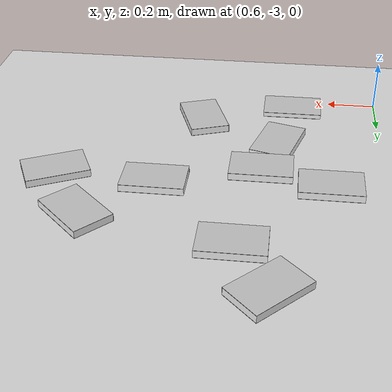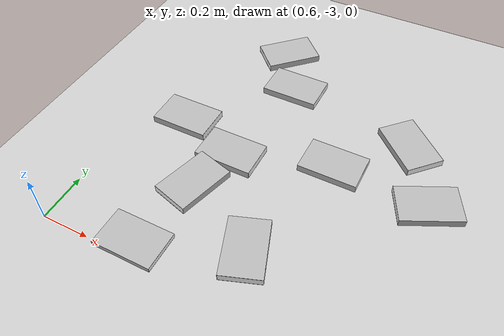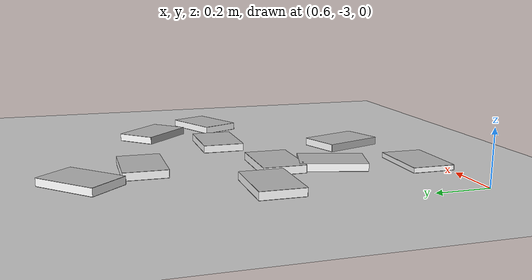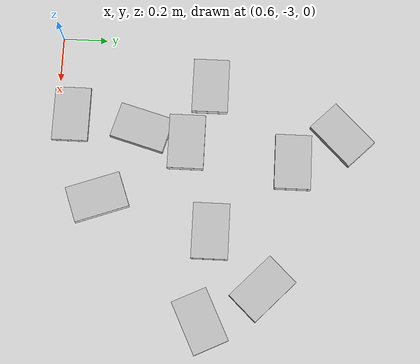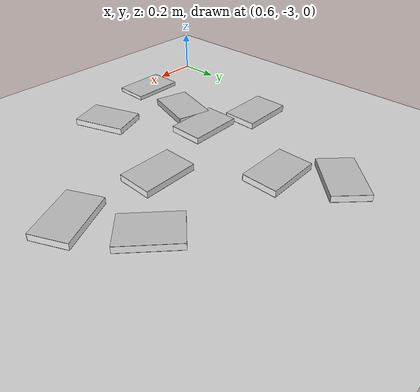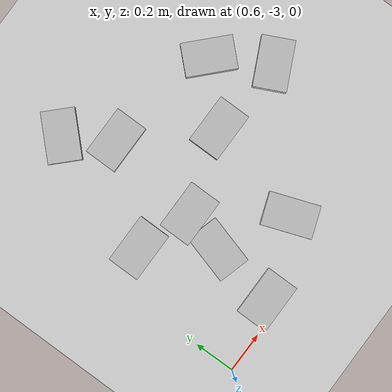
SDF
<sdf version="1.6">
 <world name="default">
  <light name="sun" type="directional">
   <pose>0 0 10 0 -0 0</pose>
   <diffuse>0.8 0.8 0.8 1</diffuse>
   <specular>0.1 0.1 0.1 1</specular>
   <attenuation>
    <range>1000</range>
    <constant>0.9</constant>
    <linear>0.01</linear>
    <quadratic>0.001</quadratic>
   </attenuation>
   <direction>-0.5 0.5 -1</direction>
  </light>
  <model name="ground_plane">
   <static>1</static>
   <link name="link">
    <collision name="collision">
     <geometry><plane><normal>0 0 1</normal><size>100 100</size></plane></geometry>
     <surface><friction><ode><mu>100</mu><mu2>50</mu2></ode></friction></surface>
    </collision>
    <visual name="visual">
     <cast_shadows>0</cast_shadows>
     <geometry><plane><normal>0 0 1</normal><size>100 100</size></plane></geometry>
     <material>
      <script><uri>file://media/materials/scripts/gazebo.material</uri><name>Gazebo/Grey</name></script>
     </material>
    </visual>
   </link>
  </model>
  <gravity>0 0 -9.8</gravity>
  <magnetic_field>6e-06 2.3e-05 -4.2e-05</magnetic_field>
  <atmosphere type="adiabatic"/>
  <physics name="default_physics" default="0" type="ode">
   <max_step_size>0.001</max_step_size>
   <real_time_factor>1</real_time_factor>
   <real_time_update_rate>1000</real_time_update_rate>
  </physics>
  <scene><ambient>0.4 0.4 0.4 1</ambient><background>0.7 0.7 0.7 1</background><shadows>1</shadows></scene>
  <spherical_coordinates>
   <surface_model>EARTH_WGS84</surface_model>
   <latitude_deg>0</latitude_deg>
   <longitude_deg>0</longitude_deg>
   <elevation>0</elevation>
   <heading_deg>0</heading_deg>
  </spherical_coordinates>
  <light name="user_point_light_0" type="point">
   <pose>-1.18893 1.15497 1 0 -0 0</pose>
   <diffuse>0.5 0.5 0.5 1</diffuse>
   <specular>0.1 0.1 0.1 1</specular>
   <attenuation>
    <range>20</range>
    <constant>0.5</constant>
    <linear>0.01</linear>
    <quadratic>0.001</quadratic>
   </attenuation>
   <cast_shadows>0</cast_shadows>
   <direction>0 0 -1</direction>
  </light>
  <light name="user_point_light_1" type="point">
   <pose>4.44294 -4.03108 1 0 -0 0</pose>
   <diffuse>0.5 0.5 0.5 1</diffuse>
   <specular>0.1 0.1 0.1 1</specular>
   <attenuation>
    <range>20</range>
    <constant>0.5</constant>
    <linear>0.01</linear>
    <quadratic>0.001</quadratic>
   </attenuation>
   <cast_shadows>0</cast_shadows>
   <direction>0 0 -1</direction>
  </light>
  <model name="book_10">
   <link name="cover">
    <pose>0 -0.000108 0.015405 0 -0 0</pose>
    <visual name="visual">
     <geometry><box><size>0.245 0.16 0.03</size></box></geometry>
     <material>
      <script>
       <uri>model://book_10/materials/scripts</uri>
       <uri>model://book_10/materials/textures</uri>
       <name>book_10</name>
      </script>
     </material>
    </visual>
    <collision name="collision"><geometry><box><size>0.245 0.16 0.03</size></box></geometry></collision>
   </link>
   <link name="page">
    <pose>0 0.000608 0.015405 0 -0 0</pose>
    <visual name="visual">
     <geometry><box><size>0.24502 0.15862 0.028</size></box></geometry>
     <material>
      <lighting>1</lighting>
      <ambient>1 1 1 1</ambient>
      <diffuse>1 1 1 1</diffuse>
      <specular>0.01 0.01 0.01 1</specular>
      <emissive>0 0 0 1</emissive>
      <shader type="vertex"><normal_map>__default__</normal_map></shader>
     </material>
    </visual>
    <collision name="collision"><geometry><box><size>0.245 0.16 0.03</size></box></geometry></collision>
   </link>
   <static>1</static>
   <pose>1.00183 -1.72763 0 0 -0 0.786912</pose>
  </model>
  <model name="book_14">
   <link name="cover">
    <pose>0 -0.000108 0.015405 0 -0 0</pose>
    <visual name="visual">
     <geometry><box><size>0.245 0.16 0.03</size></box></geometry>
     <material>
      <script>
       <uri>model://book_14/materials/scripts</uri>
       <uri>model://book_14/materials/textures</uri>
       <name>book_14</name>
      </script>
     </material>
    </visual>
    <collision name="collision"><geometry><box><size>0.245 0.16 0.03</size></box></geometry></collision>
   </link>
   <link name="page">
    <pose>0 0.000608 0.015405 0 -0 0</pose>
    <visual name="visual">
     <geometry><box><size>0.24502 0.15862 0.028</size></box></geometry>
     <material>
      <lighting>1</lighting>
      <ambient>1 1 1 1</ambient>
      <diffuse>1 1 1 1</diffuse>
      <specular>0.01 0.01 0.01 1</specular>
      <emissive>0 0 0 1</emissive>
      <shader type="vertex"><normal_map>__default__</normal_map></shader>
     </material>
    </visual>
    <collision name="collision"><geometry><box><size>0.245 0.16 0.03</size></box></geometry></collision>
   </link>
   <static>1</static>
   <pose>1.13518 -1.94196 0 0 -0 0</pose>
  </model>
  <model name="book_10_0">
   <link name="cover">
    <pose>0 -0.000108 0.015405 0 -0 0</pose>
    <visual name="visual">
     <geometry><box><size>0.245 0.16 0.03</size></box></geometry>
     <material>
      <script>
       <uri>model://book_10/materials/scripts</uri>
       <uri>model://book_10/materials/textures</uri>
       <name>book_10</name>
      </script>
     </material>
    </visual>
    <collision name="collision"><geometry><box><size>0.245 0.16 0.03</size></box></geometry></collision>
   </link>
   <link name="page">
    <pose>0 0.000608 0.015405 0 -0 0</pose>
    <visual name="visual">
     <geometry><box><size>0.24502 0.15862 0.028</size></box></geometry>
     <material>
      <lighting>1</lighting>
      <ambient>1 1 1 1</ambient>
      <diffuse>1 1 1 1</diffuse>
      <specular>0.01 0.01 0.01 1</specular>
      <emissive>0 0 0 1</emissive>
      <shader type="vertex"><normal_map>__default__</normal_map></shader>
     </material>
    </visual>
    <collision name="collision"><geometry><box><size>0.245 0.16 0.03</size></box></geometry></collision>
   </link>
   <static>1</static>
   <pose>1.46027 -2.29018 0 0 -0 0</pose>
  </model>
  <model name="book_15">
   <link name="cover">
    <pose>0 -0.000108 0.015405 0 -0 0</pose>
    <visual name="visual">
     <geometry><box><size>0.245 0.16 0.03</size></box></geometry>
     <material>
      <script>
       <uri>model://book_15/materials/scripts</uri>
       <uri>model://book_15/materials/textures</uri>
       <name>book_15</name>
      </script>
     </material>
    </visual>
    <collision name="collision"><geometry><box><size>0.245 0.16 0.03</size></box></geometry></collision>
   </link>
   <link name="page">
    <pose>0 0.000608 0.015405 0 -0 0</pose>
    <visual name="visual">
     <geometry><box><size>0.24502 0.15862 0.028</size></box></geometry>
     <material>
      <lighting>1</lighting>
      <ambient>1 1 1 1</ambient>
      <diffuse>1 1 1 1</diffuse>
      <specular>0.01 0.01 0.01 1</specular>
      <emissive>0 0 0 1</emissive>
      <shader type="vertex"><normal_map>__default__</normal_map></shader>
     </material>
    </visual>
    <collision name="collision"><geometry><box><size>0.245 0.16 0.03</size></box></geometry></collision>
   </link>
   <static>1</static>
   <pose>1.33329 -2.79154 0 0 0 -1.22308</pose>
  </model>
  <model name="book_18">
   <link name="cover">
    <pose>0 -0.000108 0.015405 0 -0 0</pose>
    <visual name="visual">
     <geometry><box><size>0.245 0.16 0.03</size></box></geometry>
     <material>
      <script>
       <uri>model://book_18/materials/scripts</uri>
       <uri>model://book_18/materials/textures</uri>
       <name>book_18</name>
      </script>
     </material>
    </visual>
    <collision name="collision"><geometry><box><size>0.245 0.16 0.03</size></box></geometry></collision>
   </link>
   <link name="page">
    <pose>0 0.000608 0.015405 0 -0 0</pose>
    <visual name="visual">
     <geometry><box><size>0.24502 0.15862 0.028</size></box></geometry>
     <material>
      <lighting>1</lighting>
      <ambient>1 1 1 1</ambient>
      <diffuse>1 1 1 1</diffuse>
      <specular>0.01 0.01 0.01 1</specular>
      <emissive>0 0 0 1</emissive>
      <shader type="vertex"><normal_map>__default__</normal_map></shader>
     </material>
    </visual>
    <collision name="collision"><geometry><box><size>0.245 0.16 0.03</size></box></geometry></collision>
   </link>
   <static>1</static>
   <pose>1.00928 -2.61628 0 0 -0 1.29495</pose>
  </model>
  <model name="book_12">
   <link name="cover">
    <pose>0 -0.000108 0.015405 0 -0 0</pose>
    <visual name="visual">
     <geometry><box><size>0.245 0.16 0.03</size></box></geometry>
     <material>
      <script>
       <uri>model://book_12/materials/scripts</uri>
       <uri>model://book_12/materials/textures</uri>
       <name>book_12</name>
      </script>
     </material>
    </visual>
    <collision name="collision"><geometry><box><size>0.245 0.16 0.03</size></box></geometry></collision>
   </link>
   <link name="page">
    <pose>0 0.000608 0.015405 0 -0 0</pose>
    <visual name="visual">
     <geometry><box><size>0.24502 0.15862 0.028</size></box></geometry>
     <material>
      <lighting>1</lighting>
      <ambient>1 1 1 1</ambient>
      <diffuse>1 1 1 1</diffuse>
      <specular>0.01 0.01 0.01 1</specular>
      <emissive>0 0 0 1</emissive>
      <shader type="vertex"><normal_map>__default__</normal_map></shader>
     </material>
    </visual>
    <collision name="collision"><geometry><box><size>0.245 0.16 0.03</size></box></geometry></collision>
   </link>
   <static>1</static>
   <pose>1.85098 -2.31703 0 0 -0 0.451438</pose>
  </model>
  <model name="book_3">
   <link name="cover">
    <pose>0 -0.000108 0.01 0 -0 0</pose>
    <visual name="visual">
     <geometry><box><size>0.245 0.16 0.02</size></box></geometry>
     <material>
      <script>
       <uri>model://book_3/materials/scripts</uri>
       <uri>model://book_3/materials/textures</uri>
       <name>book_3</name>
      </script>
     </material>
    </visual>
    <collision name="collision"><geometry><box><size>0.245 0.16 0.02</size></box></geometry></collision>
   </link>
   <link name="page">
    <pose>0 0.000608 0.01 0 -0 0</pose>
    <visual name="visual">
     <geometry><box><size>0.24502 0.15862 0.018</size></box></geometry>
     <material>
      <lighting>1</lighting>
      <ambient>1 1 1 1</ambient>
      <diffuse>1 1 1 1</diffuse>
      <specular>0.01 0.01 0.01 1</specular>
      <emissive>0 0 0 1</emissive>
      <shader type="vertex"><normal_map>__default__</normal_map></shader>
     </material>
    </visual>
    <collision name="collision"><geometry><box><size>0.245 0.16 0.018</size></box></geometry></collision>
   </link>
   <static>1</static>
   <pose>0.957358 -2.93517 0 0 -0 0</pose>
  </model>
  <model name="book_17">
   <link name="cover">
    <pose>0 -0.000108 0.015405 0 -0 0</pose>
    <visual name="visual">
     <geometry><box><size>0.245 0.16 0.03</size></box></geometry>
     <material>
      <script>
       <uri>model://book_17/materials/scripts</uri>
       <uri>model://book_17/materials/textures</uri>
       <name>book_17</name>
      </script>
     </material>
    </visual>
    <collision name="collision"><geometry><box><size>0.245 0.16 0.03</size></box></geometry></collision>
   </link>
   <link name="page">
    <pose>0 0.000608 0.015405 0 -0 0</pose>
    <visual name="visual">
     <geometry><box><size>0.24502 0.15862 0.028</size></box></geometry>
     <material>
      <lighting>1</lighting>
      <ambient>1 1 1 1</ambient>
      <diffuse>1 1 1 1</diffuse>
      <specular>0.01 0.01 0.01 1</specular>
      <emissive>0 0 0 1</emissive>
      <shader type="vertex"><normal_map>__default__</normal_map></shader>
     </material>
    </visual>
    <collision name="collision"><geometry><box><size>0.245 0.16 0.03</size></box></geometry></collision>
   </link>
   <static>1</static>
   <pose>1.06436 -2.4154 0 0 -0 0</pose>
  </model>
  <model name="book_16">
   <link name="cover">
    <pose>0 -0.000108 0.015405 0 -0 0</pose>
    <visual name="visual">
     <geometry><box><size>0.245 0.16 0.03</size></box></geometry>
     <material>
      <script>
       <uri>model://book_16/materials/scripts</uri>
       <uri>model://book_16/materials/textures</uri>
       <name>book_16</name>
      </script>
     </material>
    </visual>
    <collision name="collision"><geometry><box><size>0.245 0.16 0.03</size></box></geometry></collision>
   </link>
   <link name="page">
    <pose>0 0.000608 0.015405 0 -0 0</pose>
    <visual name="visual">
     <geometry><box><size>0.24502 0.15862 0.028</size></box></geometry>
     <material>
      <lighting>1</lighting>
      <ambient>1 1 1 1</ambient>
      <diffuse>1 1 1 1</diffuse>
      <specular>0.01 0.01 0.01 1</specular>
      <emissive>0 0 0 1</emissive>
      <shader type="vertex"><normal_map>__default__</normal_map></shader>
     </material>
    </visual>
    <collision name="collision"><geometry><box><size>0.245 0.16 0.03</size></box></geometry></collision>
   </link>
   <static>1</static>
   <pose>1.70136 -2.05608 0 0 0 -0.762109</pose>
  </model>
  <model name="book_14_clone">
   <link name="cover">
    <pose>0 -0.000108 0.015405 0 -0 0</pose>
    <visual name="visual">
     <geometry><box><size>0.245 0.16 0.03</size></box></geometry>
     <material>
      <script>
       <uri>model://book_14/materials/scripts</uri>
       <uri>model://book_14/materials/textures</uri>
       <name>book_14</name>
      </script>
     </material>
    </visual>
    <collision name="collision"><geometry><box><size>0.245 0.16 0.03</size></box></geometry></collision>
   </link>
   <link name="page">
    <pose>0 0.000608 0.015405 0 -0 0</pose>
    <visual name="visual">
     <geometry><box><size>0.24502 0.15862 0.028</size></box></geometry>
     <material>
      <lighting>1</lighting>
      <ambient>1 1 1 1</ambient>
      <diffuse>1 1 1 1</diffuse>
      <specular>0.01 0.01 0.01 1</specular>
      <emissive>0 0 0 1</emissive>
      <shader type="vertex"><normal_map>__default__</normal_map></shader>
     </material>
    </visual>
    <collision name="collision"><geometry><box><size>0.245 0.16 0.03</size></box></geometry></collision>
   </link>
   <static>1</static>
   <pose>0.799946 -2.32037 0 0 -0 0</pose>
  </model>
 </world>
</sdf>
